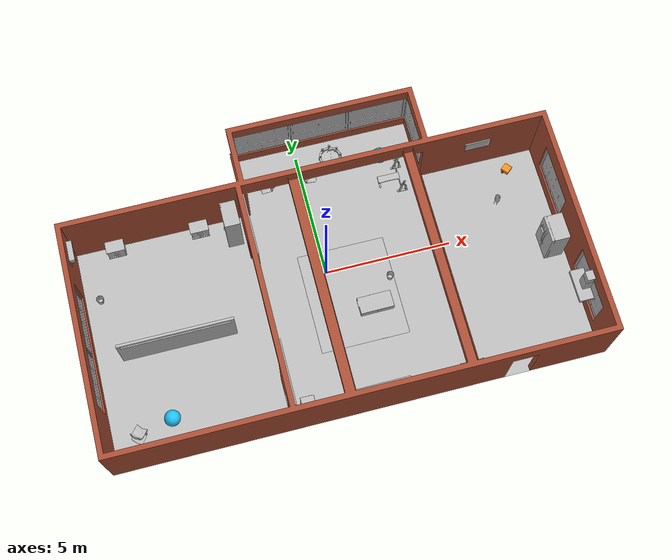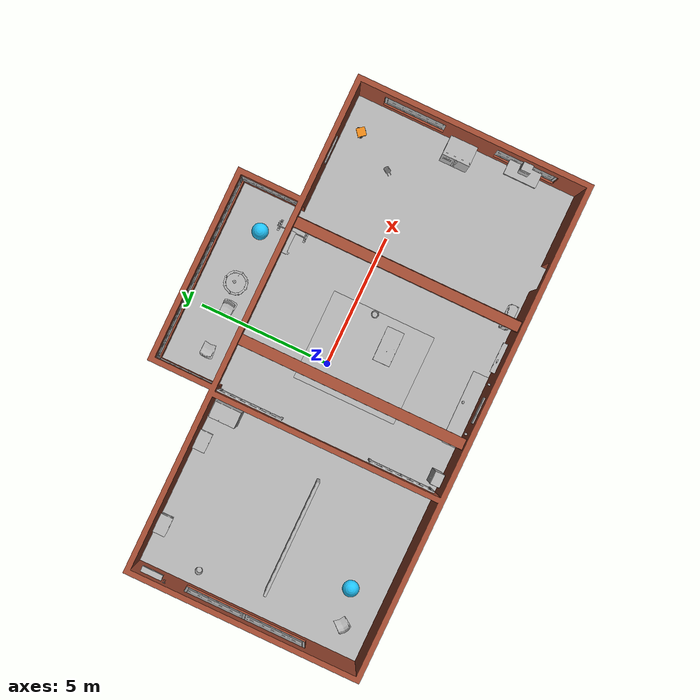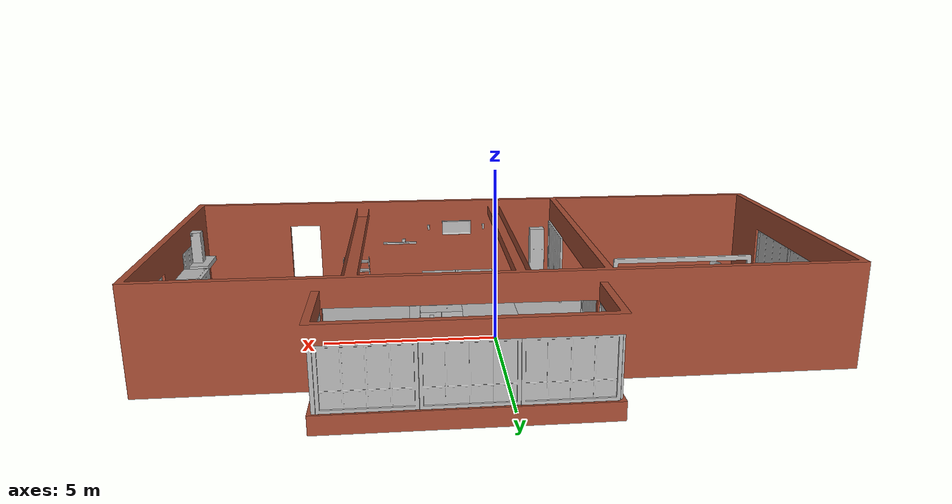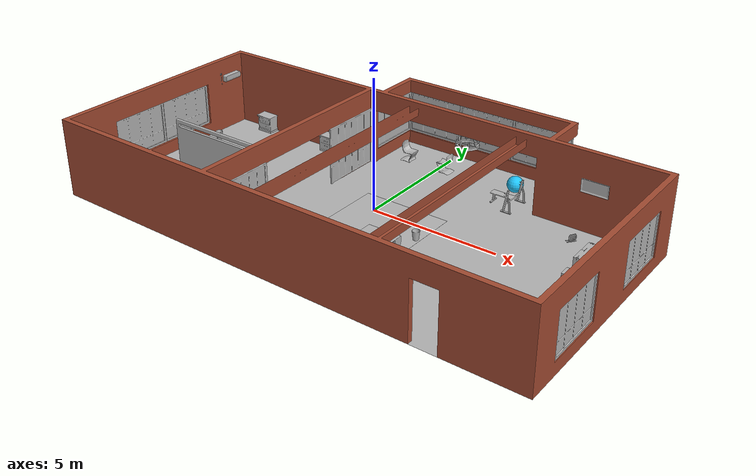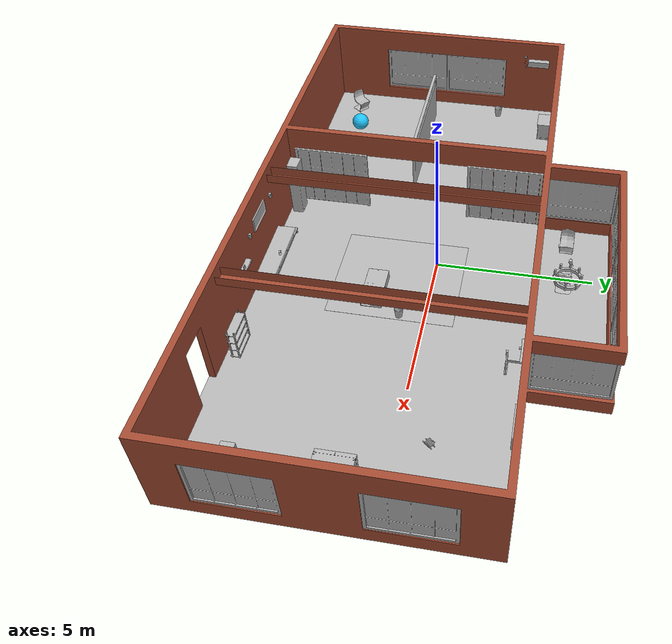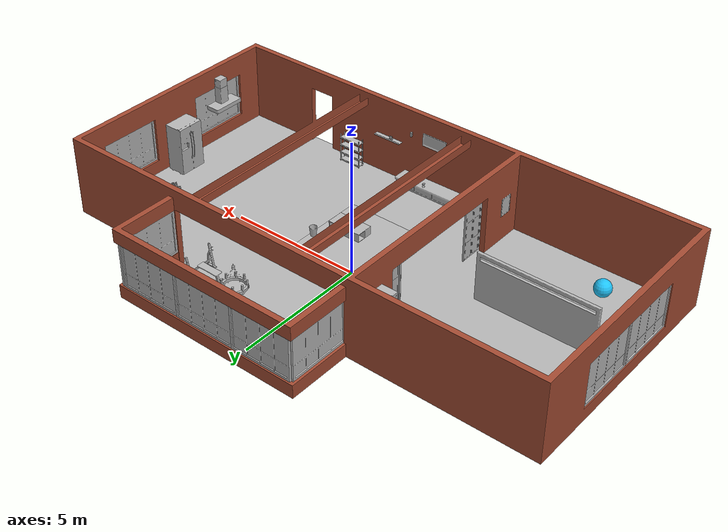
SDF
<sdf version="1.7">
 <world name="default">
  <gravity>0 0 -9.8</gravity>
  <magnetic_field>6e-06 2.3e-05 -4.2e-05</magnetic_field>
  <atmosphere type="adiabatic"/>
  <physics name="default_physics" default="0" type="ode">
   <max_step_size>0.001</max_step_size>
   <real_time_factor>1</real_time_factor>
   <real_time_update_rate>1000</real_time_update_rate>
  </physics>
  <scene>
   <ambient>0.4 0.4 0.4 1</ambient>
   <background>0.7 0.7 0.7 1</background>
   <shadows>0</shadows>
   <grid>0</grid>
   <origin_visual>0</origin_visual>
  </scene>
  <spherical_coordinates>
   <surface_model>EARTH_WGS84</surface_model>
   <latitude_deg>0</latitude_deg>
   <longitude_deg>0</longitude_deg>
   <elevation>0</elevation>
   <heading_deg>0</heading_deg>
  </spherical_coordinates>
  <model name="AirconditionerA_01_001">
   <static>1</static>
   <frame name="aws_robomaker_residential_AirconditionerA_01::__model__" attached_to="aws_robomaker_residential_AirconditionerA_01::link">
    <pose relative_to="__model__">0 0 0 0 -0 0</pose>
   </frame>
   <link name="aws_robomaker_residential_AirconditionerA_01::link">
    <inertial><mass>1</mass></inertial>
    <collision name="collision">
     <geometry>
      <mesh>
       <uri>model://aws_robomaker_residential_AirconditionerA_01/meshes/aws_AirconditionerA_01_collision.DAE</uri>
       <scale>1 1 1</scale>
      </mesh>
     </geometry>
    </collision>
    <visual name="visual">
     <geometry>
      <mesh>
       <uri>model://aws_robomaker_residential_AirconditionerA_01/meshes/aws_AirconditionerA_01_visual.DAE</uri>
      </mesh>
     </geometry>
     <meta><layer>1</layer></meta>
    </visual>
    <pose relative_to="aws_robomaker_residential_AirconditionerA_01::__model__">0 0 0 0 -0 0</pose>
   </link>
   <static>1</static>
   <pose>-9.19941 2.41123 2.08454 0 -0 0</pose>
  </model>
  <model name="AirconditionerB_01_001">
   <static>1</static>
   <frame name="aws_robomaker_residential_AirconditionerB_01::__model__" attached_to="aws_robomaker_residential_AirconditionerB_01::link">
    <pose relative_to="__model__">0 0 0 0 -0 0</pose>
   </frame>
   <link name="aws_robomaker_residential_AirconditionerB_01::link">
    <inertial><mass>1</mass></inertial>
    <collision name="collision">
     <geometry>
      <mesh>
       <uri>model://aws_robomaker_residential_AirconditionerB_01/meshes/aws_AirconditionerB_01_collision.DAE</uri>
       <scale>1 1 1</scale>
      </mesh>
     </geometry>
    </collision>
    <visual name="visual">
     <geometry>
      <mesh>
       <uri>model://aws_robomaker_residential_AirconditionerB_01/meshes/aws_AirconditionerB_01_visual.DAE</uri>
      </mesh>
     </geometry>
     <meta><layer>1</layer></meta>
    </visual>
    <pose relative_to="aws_robomaker_residential_AirconditionerB_01::__model__">0 0 0 0 -0 0</pose>
   </link>
   <pose>-2.00466 -5.22661 0.003485 0 -0 0</pose>
  </model>
  <model name="Ball_01_001">
   <static>1</static>
   <frame name="aws_robomaker_residential_Ball_01::__model__" attached_to="aws_robomaker_residential_Ball_01::link">
    <pose relative_to="__model__">0 0 0 0 -0 0</pose>
   </frame>
   <link name="aws_robomaker_residential_Ball_01::link">
    <inertial>
     <mass>0.12</mass>
     <inertia>
      <ixx>0.030752</ixx>
      <ixy>0</ixy>
      <ixz>0</ixz>
      <iyy>0.030752</iyy>
      <iyz>0</iyz>
      <izz>0.030752</izz>
     </inertia>
    </inertial>
    <collision name="collision">
     <geometry><sphere><radius>0.31</radius></sphere></geometry>
     <surface>
      <friction><ode><mu>0.85</mu><mu2>0.85</mu2></ode></friction>
      <contact><ode><kd>8500</kd><max_vel>5.1</max_vel></ode></contact>
     </surface>
    </collision>
    <visual name="visual">
     <geometry><sphere><radius>0.31</radius></sphere></geometry>
     <material><diffuse>0.12 0.76 0.97 1</diffuse><ambient>0.03 0.21 0.27 1</ambient></material>
     <meta><layer>1</layer></meta>
    </visual>
    <pose relative_to="aws_robomaker_residential_Ball_01::__model__">0 0 0 0 -0 0</pose>
   </link>
   <pose>3.2955 4.22567 0.318684 0 -0 0</pose>
  </model>
  <model name="Ball_01_003">
   <static>1</static>
   <frame name="aws_robomaker_residential_Ball_01::__model__" attached_to="aws_robomaker_residential_Ball_01::link">
    <pose relative_to="__model__">0 0 0 0 -0 0</pose>
   </frame>
   <link name="aws_robomaker_residential_Ball_01::link">
    <inertial>
     <mass>0.12</mass>
     <inertia>
      <ixx>0.030752</ixx>
      <ixy>0</ixy>
      <ixz>0</ixz>
      <iyy>0.030752</iyy>
      <iyz>0</iyz>
      <izz>0.030752</izz>
     </inertia>
    </inertial>
    <collision name="collision">
     <geometry><sphere><radius>0.31</radius></sphere></geometry>
     <surface>
      <friction><ode><mu>0.85</mu><mu2>0.85</mu2></ode></friction>
      <contact><ode><kd>8500</kd><max_vel>5.1</max_vel></ode></contact>
     </surface>
    </collision>
    <visual name="visual">
     <geometry><sphere><radius>0.31</radius></sphere></geometry>
     <material><diffuse>0.12 0.76 0.97 1</diffuse><ambient>0.03 0.21 0.27 1</ambient></material>
     <meta><layer>1</layer></meta>
    </visual>
    <pose relative_to="aws_robomaker_residential_Ball_01::__model__">0 0 0 0 -0 0</pose>
   </link>
   <pose>-6.9455 -4.22174 0.318684 0 -0 0</pose>
  </model>
  <model name="NightStand_01_001">
   <static>1</static>
   <frame name="aws_robomaker_residential_NightStand_01::__model__" attached_to="aws_robomaker_residential_NightStand_01::link">
    <pose relative_to="__model__">0 0 0 0 -0 0</pose>
   </frame>
   <link name="aws_robomaker_residential_NightStand_01::link">
    <inertial>
     <mass>13.6</mass>
     <inertia><ixx>0.6165</ixx><ixy>0</ixy><ixz>0</ixz><iyy>1.29664</iyy><iyz>0</iyz><izz>0.7706</izz></inertia>
    </inertial>
    <collision name="collision">
     <geometry>
      <mesh>
       <uri>model://aws_robomaker_residential_NightStand_01/meshes/aws_NightStand_01_collision.DAE</uri>
       <scale>1 1 1</scale>
      </mesh>
     </geometry>
    </collision>
    <visual name="visual">
     <geometry>
      <mesh><uri>model://aws_robomaker_residential_NightStand_01/meshes/aws_NightStand_01_visual.DAE</uri></mesh>
     </geometry>
     <meta><layer>1</layer></meta>
    </visual>
    <pose relative_to="aws_robomaker_residential_NightStand_01::__model__">0 0 0 0 -0 0</pose>
   </link>
   <static>1</static>
   <pose>-7.72551 2.86042 0.005258 -2e-06 0 0</pose>
  </model>
  <model name="NightStand_01_002">
   <static>1</static>
   <frame name="aws_robomaker_residential_NightStand_01::__model__" attached_to="aws_robomaker_residential_NightStand_01::link">
    <pose relative_to="__model__">0 0 0 0 -0 0</pose>
   </frame>
   <link name="aws_robomaker_residential_NightStand_01::link">
    <inertial>
     <mass>13.6</mass>
     <inertia><ixx>0.6165</ixx><ixy>0</ixy><ixz>0</ixz><iyy>1.29664</iyy><iyz>0</iyz><izz>0.7706</izz></inertia>
    </inertial>
    <collision name="collision">
     <geometry>
      <mesh>
       <uri>model://aws_robomaker_residential_NightStand_01/meshes/aws_NightStand_01_collision.DAE</uri>
       <scale>1 1 1</scale>
      </mesh>
     </geometry>
    </collision>
    <visual name="visual">
     <geometry>
      <mesh><uri>model://aws_robomaker_residential_NightStand_01/meshes/aws_NightStand_01_visual.DAE</uri></mesh>
     </geometry>
     <meta><layer>1</layer></meta>
    </visual>
    <pose relative_to="aws_robomaker_residential_NightStand_01::__model__">0 0 0 0 -0 0</pose>
   </link>
   <static>1</static>
   <pose>-4.40734 2.86042 0.005256 0 2e-06 0</pose>
  </model>
  <model name="Board_01_001">
   <static>1</static>
   <frame name="aws_robomaker_residential_Board_01::__model__" attached_to="aws_robomaker_residential_Board_01::link">
    <pose relative_to="__model__">0 0 0 0 -0 0</pose>
   </frame>
   <link name="aws_robomaker_residential_Board_01::link">
    <inertial><mass>1</mass></inertial>
    <collision name="collision">
     <geometry>
      <mesh>
       <uri>model://aws_robomaker_residential_Board_01/meshes/aws_Board_01_collision.DAE</uri>
       <scale>1 1 1</scale>
      </mesh>
     </geometry>
    </collision>
    <visual name="visual">
     <geometry>
      <mesh><uri>model://aws_robomaker_residential_Board_01/meshes/aws_Board_01_visual.DAE</uri></mesh>
     </geometry>
     <meta><layer>2</layer></meta>
    </visual>
    <pose relative_to="aws_robomaker_residential_Board_01::__model__">0 0 0 0 -0 0</pose>
   </link>
   <static>1</static>
   <pose>2.77907 -5.3927 1.53817 0 -0 0</pose>
  </model>
  <model name="ChairD_01_001">
   <static>1</static>
   <frame name="aws_robomaker_residential_ChairD_01::__model__" attached_to="aws_robomaker_residential_ChairD_01::link">
    <pose relative_to="__model__">0 0 0 0 -0 0</pose>
   </frame>
   <link name="aws_robomaker_residential_ChairD_01::link">
    <inertial>
     <mass>4.5</mass>
     <inertia><ixy>0</ixy><ixz>0</ixz><iyz>0</iyz><ixx>0.217</ixx><iyy>0.217</iyy><izz>0.067</izz></inertia>
    </inertial>
    <collision name="collision">
     <geometry>
      <mesh>
       <uri>model://aws_robomaker_residential_ChairD_01/meshes/aws_ChairD_01_collision.DAE</uri>
       <scale>1 1 1</scale>
      </mesh>
     </geometry>
    </collision>
    <visual name="visual">
     <geometry>
      <mesh><uri>model://aws_robomaker_residential_ChairD_01/meshes/aws_ChairD_01_visual.DAE</uri></mesh>
     </geometry>
     <meta><layer>1</layer></meta>
    </visual>
    <pose relative_to="aws_robomaker_residential_ChairD_01::__model__">0 0 0 0 -0 0</pose>
   </link>
   <pose>-1.38078 4.10446 0 0 -0 0</pose>
  </model>
  <model name="ChairD_01_002">
   <static>1</static>
   <frame name="aws_robomaker_residential_ChairD_01::__model__" attached_to="aws_robomaker_residential_ChairD_01::link">
    <pose relative_to="__model__">0 0 0 0 -0 0</pose>
   </frame>
   <link name="aws_robomaker_residential_ChairD_01::link">
    <inertial>
     <mass>4.5</mass>
     <inertia><ixy>0</ixy><ixz>0</ixz><iyz>0</iyz><ixx>0.217</ixx><iyy>0.217</iyy><izz>0.067</izz></inertia>
    </inertial>
    <collision name="collision">
     <geometry>
      <mesh>
       <uri>model://aws_robomaker_residential_ChairD_01/meshes/aws_ChairD_01_collision.DAE</uri>
       <scale>1 1 1</scale>
      </mesh>
     </geometry>
    </collision>
    <visual name="visual">
     <geometry>
      <mesh><uri>model://aws_robomaker_residential_ChairD_01/meshes/aws_ChairD_01_visual.DAE</uri></mesh>
     </geometry>
     <meta><layer>1</layer></meta>
    </visual>
    <pose relative_to="aws_robomaker_residential_ChairD_01::__model__">0 0 0 0 -0 0</pose>
   </link>
   <pose>0.325214 4.10446 0 0 0 -3.13874</pose>
  </model>
  <model name="ChairD_01_003">
   <static>1</static>
   <frame name="aws_robomaker_residential_ChairD_01::__model__" attached_to="aws_robomaker_residential_ChairD_01::link">
    <pose relative_to="__model__">0 0 0 0 -0 0</pose>
   </frame>
   <link name="aws_robomaker_residential_ChairD_01::link">
    <inertial>
     <mass>4.5</mass>
     <inertia><ixy>0</ixy><ixz>0</ixz><iyz>0</iyz><ixx>0.217</ixx><iyy>0.217</iyy><izz>0.067</izz></inertia>
    </inertial>
    <collision name="collision">
     <geometry>
      <mesh>
       <uri>model://aws_robomaker_residential_ChairD_01/meshes/aws_ChairD_01_collision.DAE</uri>
       <scale>1 1 1</scale>
      </mesh>
     </geometry>
    </collision>
    <visual name="visual">
     <geometry>
      <mesh><uri>model://aws_robomaker_residential_ChairD_01/meshes/aws_ChairD_01_visual.DAE</uri></mesh>
     </geometry>
     <meta><layer>1</layer></meta>
    </visual>
    <pose relative_to="aws_robomaker_residential_ChairD_01::__model__">0 0 0 0 -0 0</pose>
   </link>
   <pose>-8.27078 -4.50446 0 0 -0 0.869673</pose>
  </model>
  <model name="Chandelier_01_001">
   <static>1</static>
   <frame name="aws_robomaker_residential_Chandelier_01::__model__" attached_to="aws_robomaker_residential_Chandelier_01::link">
    <pose relative_to="__model__">0 0 0 0 -0 0</pose>
   </frame>
   <link name="aws_robomaker_residential_Chandelier_01::link">
    <inertial><mass>1</mass></inertial>
    <collision name="collision">
     <geometry>
      <mesh>
       <uri>model://aws_robomaker_residential_Chandelier_01/meshes/aws_Chandelier_01_collision.DAE</uri>
       <scale>1 1 1</scale>
      </mesh>
     </geometry>
    </collision>
    <visual name="visual">
     <geometry>
      <mesh><uri>model://aws_robomaker_residential_Chandelier_01/meshes/aws_Chandelier_01_visual.DAE</uri></mesh>
     </geometry>
     <meta><layer>2</layer></meta>
    </visual>
    <pose relative_to="aws_robomaker_residential_Chandelier_01::__model__">0 0 0 0 -0 0</pose>
   </link>
   <static>1</static>
   <pose>1.22106 4.15574 1.295 0 -0 0</pose>
  </model>
  <model name="Carpet_01_001">
   <static>1</static>
   <frame name="aws_robomaker_residential_Carpet_01::__model__" attached_to="aws_robomaker_residential_Carpet_01::link">
    <pose relative_to="__model__">0 0 0 0 -0 0</pose>
   </frame>
   <link name="aws_robomaker_residential_Carpet_01::link">
    <inertial><mass>8.1</mass></inertial>
    <collision name="collision">
     <geometry>
      <mesh>
       <uri>model://aws_robomaker_residential_Carpet_01/meshes/aws_Carpet_01_collision.DAE</uri>
       <scale>1 1 0.95</scale>
      </mesh>
     </geometry>
     <surface><friction><ode><mu>100</mu><mu2>50</mu2></ode></friction></surface>
     <pose>0 0 -0.01 0 -0 0</pose>
    </collision>
    <visual name="visual">
     <geometry>
      <mesh><uri>model://aws_robomaker_residential_Carpet_01/meshes/aws_Carpet_01_visual.DAE</uri></mesh>
     </geometry>
     <meta><layer>1</layer></meta>
    </visual>
    <pose relative_to="aws_robomaker_residential_Carpet_01::__model__">0 0 0 0 -0 0</pose>
   </link>
   <static>1</static>
   <pose>0.78505 -1.10665 0.001106 0 -0 0</pose>
  </model>
  <model name="SecurityCamera_01_001">
   <static>1</static>
   <frame name="aws_robomaker_residential_SecurityCamera_01::__model__" attached_to="aws_robomaker_residential_SecurityCamera_01::link">
    <pose relative_to="__model__">0 0 0 0 -0 0</pose>
   </frame>
   <link name="aws_robomaker_residential_SecurityCamera_01::link">
    <inertial>
     <mass>1</mass>
     <inertia>
      <ixx>18.2222</ixx>
      <ixy>0</ixy>
      <ixz>0</ixz>
      <iyy>18.2222</iyy>
      <iyz>0</iyz>
      <izz>0.0018767</izz>
     </inertia>
    </inertial>
    <collision name="collision">
     <geometry>
      <mesh>
       <uri>model://aws_robomaker_residential_SecurityCamera_01/meshes/aws_SecurityCamera_01_collision.DAE</uri>
       <scale>1 1 1</scale>
      </mesh>
     </geometry>
    </collision>
    <visual name="visual">
     <geometry>
      <mesh>
       <uri>model://aws_robomaker_residential_SecurityCamera_01/meshes/aws_SecurityCamera_01_visual.DAE</uri>
      </mesh>
     </geometry>
     <meta><layer>2</layer></meta>
    </visual>
    <pose relative_to="aws_robomaker_residential_SecurityCamera_01::__model__">0 0 0 0 -0 0</pose>
   </link>
   <pose>0.842134 -4.99629 0.495067 0 0 -2.84104</pose>
  </model>
  <model name="CoffeeTable_01_001">
   <static>1</static>
   <frame name="aws_robomaker_residential_CoffeeTable_01::__model__" attached_to="aws_robomaker_residential_CoffeeTable_01::link">
    <pose relative_to="__model__">0 0 0 0 -0 0</pose>
   </frame>
   <link name="aws_robomaker_residential_CoffeeTable_01::link">
    <inertial>
     <mass>21.7</mass>
     <inertia><ixx>0.81375</ixx><ixy>0</ixy><ixz>0</ixz><iyy>2.76675</iyy><iyz>0</iyz><izz>3.254</izz></inertia>
    </inertial>
    <collision name="collision">
     <geometry>
      <mesh>
       <uri>model://aws_robomaker_residential_CoffeeTable_01/meshes/aws_CoffeeTable_01_collision.DAE</uri>
       <scale>1 1 1</scale>
      </mesh>
     </geometry>
     <surface><contact><ode><max_vel>0.01</max_vel></ode></contact></surface>
    </collision>
    <visual name="visual">
     <geometry>
      <mesh><uri>model://aws_robomaker_residential_CoffeeTable_01/meshes/aws_CoffeeTable_01_visual.DAE</uri></mesh>
     </geometry>
     <meta><layer>1</layer></meta>
    </visual>
    <pose relative_to="aws_robomaker_residential_CoffeeTable_01::__model__">0 0 0 0 -0 0</pose>
   </link>
   <static>1</static>
   <pose>1.5123 -1.73344 0.041983 0 -0 0.01</pose>
  </model>
  <model name="FitnessEquipment_01_001">
   <static>1</static>
   <frame name="aws_robomaker_residential_FitnessEquipment_01::__model__" attached_to="aws_robomaker_residential_FitnessEquipment_01::link">
    <pose relative_to="__model__">0 0 0 0 -0 0</pose>
   </frame>
   <link name="aws_robomaker_residential_FitnessEquipment_01::link">
    <inertial><mass>80</mass></inertial>
    <collision name="collision">
     <geometry>
      <mesh>
       <uri>model://aws_robomaker_residential_FitnessEquipment_01/meshes/aws_FitnessEquipment_01_collision.DAE</uri>
       <scale>1 1 1</scale>
      </mesh>
     </geometry>
    </collision>
    <visual name="visual">
     <geometry>
      <mesh>
       <uri>model://aws_robomaker_residential_FitnessEquipment_01/meshes/aws_FitnessEquipment_01_visual.DAE</uri>
      </mesh>
     </geometry>
     <meta><layer>1</layer></meta>
    </visual>
    <pose relative_to="aws_robomaker_residential_FitnessEquipment_01::__model__">0 0 0 0 -0 0</pose>
   </link>
   <static>1</static>
   <pose>3.48472 3.1691 0.003168 0 -0 0</pose>
  </model>
  <model name="FoldingDoor_01_001">
   <static>1</static>
   <frame name="aws_robomaker_residential_FoldingDoor_01::__model__" attached_to="aws_robomaker_residential_FoldingDoor_01::link">
    <pose relative_to="__model__">0 0 0 0 -0 0</pose>
   </frame>
   <link name="aws_robomaker_residential_FoldingDoor_01::link">
    <inertial><mass>1</mass></inertial>
    <collision name="collision">
     <geometry>
      <mesh>
       <uri>model://aws_robomaker_residential_FoldingDoor_01/meshes/aws_FoldingDoor_01_collision.DAE</uri>
       <scale>1 1 1</scale>
      </mesh>
     </geometry>
    </collision>
    <visual name="visual">
     <geometry>
      <mesh><uri>model://aws_robomaker_residential_FoldingDoor_01/meshes/aws_FoldingDoor_01_visual.DAE</uri></mesh>
     </geometry>
     <meta><layer>2</layer></meta>
    </visual>
    <pose relative_to="aws_robomaker_residential_FoldingDoor_01::__model__">0 0 0 0 -0 0</pose>
   </link>
   <static>1</static>
   <pose>-2.4611 1.84422 0.041881 0 -0 0</pose>
  </model>
  <model name="FoldingDoor_01_002">
   <static>1</static>
   <frame name="aws_robomaker_residential_FoldingDoor_01::__model__" attached_to="aws_robomaker_residential_FoldingDoor_01::link">
    <pose relative_to="__model__">0 0 0 0 -0 0</pose>
   </frame>
   <link name="aws_robomaker_residential_FoldingDoor_01::link">
    <inertial><mass>1</mass></inertial>
    <collision name="collision">
     <geometry>
      <mesh>
       <uri>model://aws_robomaker_residential_FoldingDoor_01/meshes/aws_FoldingDoor_01_collision.DAE</uri>
       <scale>1 1 1</scale>
      </mesh>
     </geometry>
    </collision>
    <visual name="visual">
     <geometry>
      <mesh><uri>model://aws_robomaker_residential_FoldingDoor_01/meshes/aws_FoldingDoor_01_visual.DAE</uri></mesh>
     </geometry>
     <meta><layer>2</layer></meta>
    </visual>
    <pose relative_to="aws_robomaker_residential_FoldingDoor_01::__model__">0 0 0 0 -0 0</pose>
   </link>
   <static>1</static>
   <pose>-2.4611 -4.05332 0.041881 0 -0 0</pose>
  </model>
  <model name="HouseWallB_01_001">
   <static>1</static>
   <frame name="aws_robomaker_residential_HouseWallB_01::__model__" attached_to="aws_robomaker_residential_HouseWallB_01::link">
    <pose relative_to="__model__">0 0 0 0 -0 0</pose>
   </frame>
   <link name="aws_robomaker_residential_HouseWallB_01::link">
    <inertial><mass>1</mass></inertial>
    <collision name="collision">
     <geometry>
      <mesh>
       <uri>model://aws_robomaker_residential_HouseWallB_01/meshes/aws_HouseWallB_01_collision.DAE</uri>
       <scale>1 1 1</scale>
      </mesh>
     </geometry>
     <material>
      <script><uri>file://media/materials/scripts/gazebo.material</uri><name>Gazebo/Bricks</name></script>
      <ambient>1 1 1 1</ambient>
     </material>
    </collision>
    <visual name="visual">
     <geometry>
      <mesh><uri>model://aws_robomaker_residential_HouseWallB_01/meshes/aws_HouseWallB_01_visual.DAE</uri></mesh>
     </geometry>
     <material>
      <script><uri>file://media/materials/scripts/gazebo.material</uri><name>Gazebo/Bricks</name></script>
      <ambient>1 1 1 1</ambient>
     </material>
     <meta><layer>2</layer></meta>
    </visual>
    <pose relative_to="aws_robomaker_residential_HouseWallB_01::__model__">0 0 0 0 -0 0</pose>
   </link>
   <static>1</static>
  </model>
  <model name="FloorB_01_001">
   <static>1</static>
   <frame name="aws_robomaker_residential_FloorB_01::__model__" attached_to="aws_robomaker_residential_FloorB_01::link">
    <pose relative_to="__model__">0 0 0 0 -0 0</pose>
   </frame>
   <link name="aws_robomaker_residential_FloorB_01::link">
    <inertial><mass>100</mass></inertial>
    <collision name="collision">
     <geometry>
      <mesh>
       <uri>model://aws_robomaker_residential_FloorB_01/meshes/aws_FloorB_01_collision.DAE</uri>
       <scale>1 1 0.9</scale>
      </mesh>
     </geometry>
     <surface><friction><ode><mu>100</mu><mu2>50</mu2></ode></friction></surface>
    </collision>
    <visual name="visual">
     <geometry>
      <mesh><uri>model://aws_robomaker_residential_FloorB_01/meshes/aws_FloorB_01_visual.DAE</uri></mesh>
     </geometry>
     <meta><layer>1</layer></meta>
    </visual>
    <pose relative_to="aws_robomaker_residential_FloorB_01::__model__">0 0 0 0 -0 0</pose>
   </link>
   <static>1</static>
  </model>
  <model name="LightC_01_001">
   <static>1</static>
   <frame name="aws_robomaker_residential_LightC_01::__model__" attached_to="aws_robomaker_residential_LightC_01::link">
    <pose relative_to="__model__">0 0 0 0 -0 0</pose>
   </frame>
   <link name="aws_robomaker_residential_LightC_01::link">
    <inertial><mass>1</mass></inertial>
    <collision name="collision">
     <geometry>
      <mesh>
       <uri>model://aws_robomaker_residential_LightC_01/meshes/aws_LightC_01_collision.DAE</uri>
       <scale>1 1 1</scale>
      </mesh>
     </geometry>
    </collision>
    <visual name="visual">
     <geometry>
      <mesh><uri>model://aws_robomaker_residential_LightC_01/meshes/aws_LightC_01_visual.DAE</uri></mesh>
     </geometry>
     <meta><layer>2</layer></meta>
    </visual>
    <pose relative_to="aws_robomaker_residential_LightC_01::__model__">0 0 0 0 -0 0</pose>
   </link>
   <static>1</static>
   <pose>1.76957 -5.44437 2 0 -0 0</pose>
  </model>
  <model name="LightC_01_002">
   <static>1</static>
   <frame name="aws_robomaker_residential_LightC_01::__model__" attached_to="aws_robomaker_residential_LightC_01::link">
    <pose relative_to="__model__">0 0 0 0 -0 0</pose>
   </frame>
   <link name="aws_robomaker_residential_LightC_01::link">
    <inertial><mass>1</mass></inertial>
    <collision name="collision">
     <geometry>
      <mesh>
       <uri>model://aws_robomaker_residential_LightC_01/meshes/aws_LightC_01_collision.DAE</uri>
       <scale>1 1 1</scale>
      </mesh>
     </geometry>
    </collision>
    <visual name="visual">
     <geometry>
      <mesh><uri>model://aws_robomaker_residential_LightC_01/meshes/aws_LightC_01_visual.DAE</uri></mesh>
     </geometry>
     <meta><layer>2</layer></meta>
    </visual>
    <pose relative_to="aws_robomaker_residential_LightC_01::__model__">0 0 0 0 -0 0</pose>
   </link>
   <static>1</static>
   <pose>-0.138245 -5.44437 2 0 -0 0</pose>
  </model>
  <model name="PortraitA_01">
   <static>1</static>
   <frame name="aws_robomaker_residential_PortraitA_01::__model__" attached_to="aws_robomaker_residential_PortraitA_01::link">
    <pose relative_to="__model__">0 0 0 0 -0 0</pose>
   </frame>
   <link name="aws_robomaker_residential_PortraitA_01::link">
    <inertial><mass>1</mass></inertial>
    <collision name="collision">
     <geometry>
      <mesh>
       <uri>model://aws_robomaker_residential_PortraitA_01/meshes/aws_PortraitA_01_collision.DAE</uri>
       <scale>1 1 1</scale>
      </mesh>
     </geometry>
    </collision>
    <visual name="visual">
     <geometry>
      <mesh><uri>model://aws_robomaker_residential_PortraitA_01/meshes/aws_PortraitA_01_visual.DAE</uri></mesh>
     </geometry>
     <meta><layer>2</layer></meta>
    </visual>
    <pose relative_to="aws_robomaker_residential_PortraitA_01::__model__">0 0 0 0 -0 0</pose>
   </link>
   <static>1</static>
   <pose>-2.71236 -4.81754 1 0 -0 1.5668</pose>
  </model>
  <model name="PortraitD_01">
   <static>1</static>
   <frame name="aws_robomaker_residential_PortraitD_01::__model__" attached_to="aws_robomaker_residential_PortraitD_01::link">
    <pose relative_to="__model__">0 0 0 0 -0 0</pose>
   </frame>
   <link name="aws_robomaker_residential_PortraitD_01::link">
    <inertial><mass>1.5</mass></inertial>
    <collision name="collision">
     <geometry>
      <mesh>
       <uri>model://aws_robomaker_residential_PortraitD_01/meshes/aws_PortraitD_01_collision.DAE</uri>
       <scale>1 1 1</scale>
      </mesh>
     </geometry>
    </collision>
    <visual name="visual">
     <geometry>
      <mesh><uri>model://aws_robomaker_residential_PortraitD_01/meshes/aws_PortraitD_01_visual.DAE</uri></mesh>
     </geometry>
     <meta><layer>2</layer></meta>
    </visual>
    <pose relative_to="aws_robomaker_residential_PortraitD_01::__model__">0 0 0 0 -0 0</pose>
   </link>
   <static>1</static>
   <pose>0.789763 -5.47872 1.8 0 -0 3.13853</pose>
  </model>
  <model name="PortraitD_02">
   <static>1</static>
   <frame name="aws_robomaker_residential_PortraitD_02::__model__" attached_to="aws_robomaker_residential_PortraitD_02::link">
    <pose relative_to="__model__">0 0 0 0 -0 0</pose>
   </frame>
   <link name="aws_robomaker_residential_PortraitD_02::link">
    <inertial><mass>1.5</mass></inertial>
    <collision name="collision">
     <geometry>
      <mesh>
       <uri>model://aws_robomaker_residential_PortraitD_02/meshes/aws_PortraitD_01_collision.DAE</uri>
       <scale>1 1 1</scale>
      </mesh>
     </geometry>
    </collision>
    <visual name="visual">
     <geometry>
      <mesh><uri>model://aws_robomaker_residential_PortraitD_02/meshes/aws_PortraitD_01_visual.DAE</uri></mesh>
     </geometry>
     <meta><layer>2</layer></meta>
    </visual>
    <pose relative_to="aws_robomaker_residential_PortraitD_02::__model__">0 0 0 0 -0 0</pose>
   </link>
   <static>1</static>
   <pose>6.87018 3.08031 1.48844 0 -0 0</pose>
  </model>
  <model name="DeskPortraitD_01">
   <static>1</static>
   <frame name="aws_robomaker_residential_DeskPortraitD_01::__model__" attached_to="aws_robomaker_residential_DeskPortraitD_01::link">
    <pose relative_to="__model__">0 0 0 0 -0 0</pose>
   </frame>
   <link name="aws_robomaker_residential_DeskPortraitD_01::link">
    <inertial>
     <mass>0.4</mass>
     <inertia><ixx>0.0616</ixx><ixy>0</ixy><ixz>0</ixz><iyy>0.1313</iyy><iyz>0</iyz><izz>0.0803</izz></inertia>
    </inertial>
    <collision name="collision">
     <geometry>
      <mesh>
       <uri>model://aws_robomaker_residential_DeskPortraitD_01/meshes/aws_DeskPortraitD_01_collision.DAE</uri>
       <scale>1 1 1</scale>
      </mesh>
     </geometry>
     <surface>
      <friction><ode><mu>0.7</mu><mu2>0.7</mu2></ode></friction>
      <contact><ode><kd>28500</kd></ode></contact>
     </surface>
    </collision>
    <visual name="visual">
     <geometry>
      <mesh>
       <uri>model://aws_robomaker_residential_DeskPortraitD_01/meshes/aws_DeskPortraitD_01_visual.DAE</uri>
      </mesh>
     </geometry>
     <meta><layer>1</layer></meta>
    </visual>
    <pose relative_to="aws_robomaker_residential_DeskPortraitD_01::__model__">0 0 0 0 -0 0</pose>
   </link>
   <pose>2.64556 -5.37622 1.57374 0 0 -3.11283</pose>
  </model>
  <model name="DeskPortraitD_03">
   <static>1</static>
   <frame name="aws_robomaker_residential_DeskPortraitD_03::__model__" attached_to="aws_robomaker_residential_DeskPortraitD_03::link">
    <pose relative_to="__model__">0 0 0 0 -0 0</pose>
   </frame>
   <link name="aws_robomaker_residential_DeskPortraitD_03::link">
    <inertial>
     <mass>0.4</mass>
     <inertia><ixx>0.0616</ixx><ixy>0</ixy><ixz>0</ixz><iyy>0.1313</iyy><iyz>0</iyz><izz>0.0803</izz></inertia>
    </inertial>
    <collision name="collision">
     <geometry>
      <mesh>
       <uri>model://aws_robomaker_residential_DeskPortraitD_03/meshes/aws_DeskPortraitD_01_collision.DAE</uri>
       <scale>1 1 1</scale>
      </mesh>
     </geometry>
     <surface>
      <friction><ode><mu>0.7</mu><mu2>0.7</mu2></ode></friction>
      <contact><ode><kd>28500</kd></ode></contact>
     </surface>
    </collision>
    <visual name="visual">
     <geometry>
      <mesh>
       <uri>model://aws_robomaker_residential_DeskPortraitD_03/meshes/aws_DeskPortraitD_01_visual.DAE</uri>
      </mesh>
     </geometry>
     <meta><layer>1</layer></meta>
    </visual>
    <pose relative_to="aws_robomaker_residential_DeskPortraitD_03::__model__">0 0 0 0 -0 0</pose>
   </link>
   <pose>1.82673 -1.46488 0.126208 1e-05 6e-06 -3.11438</pose>
  </model>
  <model name="Rangehood_01_001">
   <static>1</static>
   <frame name="aws_robomaker_residential_Rangehood_01::__model__" attached_to="aws_robomaker_residential_Rangehood_01::link">
    <pose relative_to="__model__">0 0 0 0 -0 0</pose>
   </frame>
   <link name="aws_robomaker_residential_Rangehood_01::link">
    <inertial><mass>1</mass></inertial>
    <collision name="collision">
     <geometry>
      <mesh>
       <uri>model://aws_robomaker_residential_Rangehood_01/meshes/aws_Rangehood_01_collision.DAE</uri>
       <scale>1 1 1</scale>
      </mesh>
     </geometry>
    </collision>
    <visual name="visual">
     <geometry>
      <mesh><uri>model://aws_robomaker_residential_Rangehood_01/meshes/aws_Rangehood_01_visual.DAE</uri></mesh>
     </geometry>
     <meta><layer>2</layer></meta>
    </visual>
    <pose relative_to="aws_robomaker_residential_Rangehood_01::__model__">0 0 0 0 -0 0</pose>
   </link>
   <static>1</static>
   <pose>9.01979 -3.36994 1.50761 0 -0 0</pose>
  </model>
  <model name="Refrigerator_01_001">
   <static>1</static>
   <frame name="aws_robomaker_residential_Refrigerator_01::__model__" attached_to="aws_robomaker_residential_Refrigerator_01::link">
    <pose relative_to="__model__">0 0 0 0 -0 0</pose>
   </frame>
   <link name="aws_robomaker_residential_Refrigerator_01::link">
    <inertial><mass>1</mass></inertial>
    <collision name="collision">
     <geometry>
      <mesh>
       <uri>model://aws_robomaker_residential_Refrigerator_01/meshes/aws_Refrigerator_01_collision.DAE</uri>
       <scale>1 1 1</scale>
      </mesh>
     </geometry>
    </collision>
    <visual name="visual">
     <geometry>
      <mesh>
       <uri>model://aws_robomaker_residential_Refrigerator_01/meshes/aws_Refrigerator_01_visual.DAE</uri>
      </mesh>
     </geometry>
     <meta><layer>1</layer></meta>
    </visual>
    <pose relative_to="aws_robomaker_residential_Refrigerator_01::__model__">0 0 0 0 -0 0</pose>
   </link>
   <static>1</static>
   <pose>8.70273 -1.03203 0 0 0 -1.5635</pose>
  </model>
  <model name="ShoeRack_01_001">
   <static>1</static>
   <frame name="aws_robomaker_residential_ShoeRack_01::__model__" attached_to="aws_robomaker_residential_ShoeRack_01::link">
    <pose relative_to="__model__">0 0 0 0 -0 0</pose>
   </frame>
   <link name="aws_robomaker_residential_ShoeRack_01::link">
    <inertial>
     <mass>6</mass>
     <inertia>
      <ixx>0.02</ixx>
      <ixy>0</ixy>
      <ixz>0</ixz>
      <iyy>0.04</iyy>
      <iyz>0</iyz>
      <ixx>0.02</ixx>
      <izz>1</izz>
     </inertia>
    </inertial>
    <collision name="collision">
     <geometry>
      <mesh>
       <uri>model://aws_robomaker_residential_ShoeRack_01/meshes/aws_ShoeRack_01_collision.DAE</uri>
       <scale>1 1 1</scale>
      </mesh>
     </geometry>
     <surface>
      <friction><ode><mu>0.2</mu><mu2>0.2</mu2></ode></friction>
      <contact><ode><kd>2500</kd></ode></contact>
     </surface>
    </collision>
    <visual name="visual">
     <geometry>
      <mesh><uri>model://aws_robomaker_residential_ShoeRack_01/meshes/aws_ShoeRack_01_visual.DAE</uri></mesh>
     </geometry>
     <meta><layer>1</layer></meta>
    </visual>
    <pose relative_to="aws_robomaker_residential_ShoeRack_01::__model__">0 0 0 0 -0 0</pose>
   </link>
   <pose>4.29798 -5.17357 0 0 -0 0</pose>
  </model>
  <model name="Tableware_01_001">
   <static>1</static>
   <frame name="aws_robomaker_residential_Tableware_01::__model__" attached_to="aws_robomaker_residential_Tableware_01::link">
    <pose relative_to="__model__">0 0 0 0 -0 0</pose>
   </frame>
   <link name="aws_robomaker_residential_Tableware_01::link">
    <inertial><mass>1</mass></inertial>
    <collision name="collision">
     <geometry>
      <mesh>
       <uri>model://aws_robomaker_residential_Tableware_01/meshes/aws_Tableware_01_collision.DAE</uri>
       <scale>1 1 1</scale>
      </mesh>
     </geometry>
    </collision>
    <visual name="visual">
     <geometry>
      <mesh><uri>model://aws_robomaker_residential_Tableware_01/meshes/aws_Tableware_01_visual.DAE</uri></mesh>
     </geometry>
     <meta><layer>1</layer></meta>
    </visual>
    <pose relative_to="aws_robomaker_residential_Tableware_01::__model__">0 0 0 0 -0 0</pose>
   </link>
   <pose>7.15317 0.982767 0.817812 -0.001238 -0.000976 1.02476</pose>
  </model>
  <model name="Trash_01_001">
   <static>1</static>
   <frame name="aws_robomaker_residential_Trash_01::__model__" attached_to="aws_robomaker_residential_Trash_01::link">
    <pose relative_to="__model__">0 0 0 0 -0 0</pose>
   </frame>
   <link name="aws_robomaker_residential_Trash_01::link">
    <inertial>
     <mass>0.1</mass>
     <inertia><ixy>0</ixy><ixz>0</ixz><iyz>0</iyz><ixx>0.05288</ixx><iyy>0.05288</iyy><izz>0.09132</izz></inertia>
    </inertial>
    <collision name="collision">
     <geometry>
      <mesh>
       <uri>model://aws_robomaker_residential_Trash_01/meshes/aws_Trash_01_collision.DAE</uri>
       <scale>1 1 1</scale>
      </mesh>
     </geometry>
    </collision>
    <visual name="visual">
     <geometry>
      <mesh><uri>model://aws_robomaker_residential_Trash_01/meshes/aws_Trash_01_visual.DAE</uri></mesh>
     </geometry>
     <meta><layer>1</layer></meta>
    </visual>
    <pose relative_to="aws_robomaker_residential_Trash_01::__model__">0 0 0 0 -0 0</pose>
   </link>
   <pose>2.36015 -0.796238 0.011 0 -0 0</pose>
  </model>
  <model name="Trash_01_002">
   <static>1</static>
   <frame name="aws_robomaker_residential_Trash_01::__model__" attached_to="aws_robomaker_residential_Trash_01::link">
    <pose relative_to="__model__">0 0 0 0 -0 0</pose>
   </frame>
   <link name="aws_robomaker_residential_Trash_01::link">
    <inertial>
     <mass>0.1</mass>
     <inertia><ixy>0</ixy><ixz>0</ixz><iyz>0</iyz><ixx>0.05288</ixx><iyy>0.05288</iyy><izz>0.09132</izz></inertia>
    </inertial>
    <collision name="collision">
     <geometry>
      <mesh>
       <uri>model://aws_robomaker_residential_Trash_01/meshes/aws_Trash_01_collision.DAE</uri>
       <scale>1 1 1</scale>
      </mesh>
     </geometry>
    </collision>
    <visual name="visual">
     <geometry>
      <mesh><uri>model://aws_robomaker_residential_Trash_01/meshes/aws_Trash_01_visual.DAE</uri></mesh>
     </geometry>
     <meta><layer>1</layer></meta>
    </visual>
    <pose relative_to="aws_robomaker_residential_Trash_01::__model__">0 0 0 0 -0 0</pose>
   </link>
   <pose>-8.70415 1.00058 0.011 0 -0 0</pose>
  </model>
  <model name="TVCabinet_01_001">
   <static>1</static>
   <frame name="aws_robomaker_residential_TVCabinet_01::__model__" attached_to="aws_robomaker_residential_TVCabinet_01::link">
    <pose relative_to="__model__">0 0 0 0 -0 0</pose>
   </frame>
   <link name="aws_robomaker_residential_TVCabinet_01::link">
    <inertial>
     <mass>59.2</mass>
     <inertia><ixx>30.4</ixx><ixy>0</ixy><ixz>0</ixz><iyy>2.56</iyy><iyz>0</iyz><izz>31.38</izz></inertia>
    </inertial>
    <collision name="collision">
     <geometry>
      <mesh>
       <uri>model://aws_robomaker_residential_TVCabinet_01/meshes/aws_TVCabinet_01_collision.DAE</uri>
       <scale>1 1 1</scale>
      </mesh>
     </geometry>
    </collision>
    <visual name="visual">
     <geometry>
      <mesh><uri>model://aws_robomaker_residential_TVCabinet_01/meshes/aws_TVCabinet_01_visual.DAE</uri></mesh>
     </geometry>
     <meta><layer>1</layer></meta>
    </visual>
    <pose relative_to="aws_robomaker_residential_TVCabinet_01::__model__">0 0 0 0 -0 0</pose>
   </link>
   <static>1</static>
   <pose>0.629509 -5.18358 -0.017049 0 -0 1.5792</pose>
  </model>
  <model name="RoomWall_01_001">
   <static>1</static>
   <frame name="aws_robomaker_residential_RoomWall_01::__model__" attached_to="aws_robomaker_residential_RoomWall_01::link">
    <pose relative_to="__model__">0 0 0 0 -0 0</pose>
   </frame>
   <link name="aws_robomaker_residential_RoomWall_01::link">
    <inertial><mass>100</mass></inertial>
    <collision name="collision">
     <geometry>
      <mesh>
       <uri>model://aws_robomaker_residential_RoomWall_01/meshes/aws_RoomWall_01_collision.DAE</uri>
       <scale>1 1 1</scale>
      </mesh>
     </geometry>
    </collision>
    <visual name="visual">
     <geometry>
      <mesh><uri>model://aws_robomaker_residential_RoomWall_01/meshes/aws_RoomWall_01_visual.DAE</uri></mesh>
     </geometry>
     <meta><layer>2</layer></meta>
    </visual>
    <pose relative_to="aws_robomaker_residential_RoomWall_01::__model__">0 0 0 0 -0 0</pose>
   </link>
   <static>1</static>
   <pose>-6.09755 -1.49618 0.028124 0 -0 0</pose>
  </model>
  <model name="Wardrobe_01_001">
   <static>1</static>
   <frame name="aws_robomaker_residential_Wardrobe_01::__model__" attached_to="aws_robomaker_residential_Wardrobe_01::link">
    <pose relative_to="__model__">0 0 0 0 -0 0</pose>
   </frame>
   <link name="aws_robomaker_residential_Wardrobe_01::link">
    <inertial><mass>51.7</mass></inertial>
    <collision name="collision">
     <geometry>
      <mesh>
       <uri>model://aws_robomaker_residential_Wardrobe_01/meshes/aws_Wardrobe_01_collision.DAE</uri>
       <scale>1 1 1</scale>
      </mesh>
     </geometry>
    </collision>
    <visual name="visual">
     <geometry>
      <mesh><uri>model://aws_robomaker_residential_Wardrobe_01/meshes/aws_Wardrobe_01_visual.DAE</uri></mesh>
     </geometry>
     <meta><layer>1</layer></meta>
    </visual>
    <pose relative_to="aws_robomaker_residential_Wardrobe_01::__model__">0 0 0 0 -0 0</pose>
   </link>
   <static>1</static>
   <pose>-3.14671 2.4762 0.000704 0 0 -1.56967</pose>
  </model>
  <model name="RoomWindow_01_001">
   <static>1</static>
   <frame name="aws_robomaker_residential_RoomWindow_01::__model__" attached_to="aws_robomaker_residential_RoomWindow_01::link">
    <pose relative_to="__model__">0 0 0 0 -0 0</pose>
   </frame>
   <link name="aws_robomaker_residential_RoomWindow_01::link">
    <inertial><mass>1</mass></inertial>
    <collision name="collision">
     <geometry>
      <mesh>
       <uri>model://aws_robomaker_residential_RoomWindow_01/meshes/aws_RoomWindow_01_collision.DAE</uri>
       <scale>1 1 1</scale>
      </mesh>
     </geometry>
    </collision>
    <visual name="visual">
     <geometry>
      <mesh><uri>model://aws_robomaker_residential_RoomWindow_01/meshes/aws_RoomWindow_01_visual.DAE</uri></mesh>
     </geometry>
     <meta><layer>2</layer></meta>
    </visual>
    <pose relative_to="aws_robomaker_residential_RoomWindow_01::__model__">0 0 0 0 -0 0</pose>
   </link>
   <static>1</static>
   <pose>-9.4186 -0.026285 0.502739 0 -0 0</pose>
  </model>
  <model name="RoomWindow_01_002">
   <static>1</static>
   <frame name="aws_robomaker_residential_RoomWindow_01::__model__" attached_to="aws_robomaker_residential_RoomWindow_01::link">
    <pose relative_to="__model__">0 0 0 0 -0 0</pose>
   </frame>
   <link name="aws_robomaker_residential_RoomWindow_01::link">
    <inertial><mass>1</mass></inertial>
    <collision name="collision">
     <geometry>
      <mesh>
       <uri>model://aws_robomaker_residential_RoomWindow_01/meshes/aws_RoomWindow_01_collision.DAE</uri>
       <scale>1 1 1</scale>
      </mesh>
     </geometry>
    </collision>
    <visual name="visual">
     <geometry>
      <mesh><uri>model://aws_robomaker_residential_RoomWindow_01/meshes/aws_RoomWindow_01_visual.DAE</uri></mesh>
     </geometry>
     <meta><layer>2</layer></meta>
    </visual>
    <pose relative_to="aws_robomaker_residential_RoomWindow_01::__model__">0 0 0 0 -0 0</pose>
   </link>
   <static>1</static>
   <pose>-9.4186 -2.37409 0.502739 0 -0 0</pose>
  </model>
  <model name="RoomWindow_01_003">
   <static>1</static>
   <frame name="aws_robomaker_residential_RoomWindow_01::__model__" attached_to="aws_robomaker_residential_RoomWindow_01::link">
    <pose relative_to="__model__">0 0 0 0 -0 0</pose>
   </frame>
   <link name="aws_robomaker_residential_RoomWindow_01::link">
    <inertial><mass>1</mass></inertial>
    <collision name="collision">
     <geometry>
      <mesh>
       <uri>model://aws_robomaker_residential_RoomWindow_01/meshes/aws_RoomWindow_01_collision.DAE</uri>
       <scale>1 1 1</scale>
      </mesh>
     </geometry>
    </collision>
    <visual name="visual">
     <geometry>
      <mesh><uri>model://aws_robomaker_residential_RoomWindow_01/meshes/aws_RoomWindow_01_visual.DAE</uri></mesh>
     </geometry>
     <meta><layer>2</layer></meta>
    </visual>
    <pose relative_to="aws_robomaker_residential_RoomWindow_01::__model__">0 0 0 0 -0 0</pose>
   </link>
   <static>1</static>
   <pose>9.42262 -3.37398 0.502739 0 0 -3.1361</pose>
  </model>
  <model name="RoomWindow_01_004">
   <static>1</static>
   <frame name="aws_robomaker_residential_RoomWindow_01::__model__" attached_to="aws_robomaker_residential_RoomWindow_01::link">
    <pose relative_to="__model__">0 0 0 0 -0 0</pose>
   </frame>
   <link name="aws_robomaker_residential_RoomWindow_01::link">
    <inertial><mass>1</mass></inertial>
    <collision name="collision">
     <geometry>
      <mesh>
       <uri>model://aws_robomaker_residential_RoomWindow_01/meshes/aws_RoomWindow_01_collision.DAE</uri>
       <scale>1 1 1</scale>
      </mesh>
     </geometry>
    </collision>
    <visual name="visual">
     <geometry>
      <mesh><uri>model://aws_robomaker_residential_RoomWindow_01/meshes/aws_RoomWindow_01_visual.DAE</uri></mesh>
     </geometry>
     <meta><layer>2</layer></meta>
    </visual>
    <pose relative_to="aws_robomaker_residential_RoomWindow_01::__model__">0 0 0 0 -0 0</pose>
   </link>
   <static>1</static>
   <pose>9.42256 0.96852 0.496581 0 0 -3.1361</pose>
  </model>
  <model name="RoomWindow_01_005">
   <static>1</static>
   <frame name="aws_robomaker_residential_RoomWindow_01::__model__" attached_to="aws_robomaker_residential_RoomWindow_01::link">
    <pose relative_to="__model__">0 0 0 0 -0 0</pose>
   </frame>
   <link name="aws_robomaker_residential_RoomWindow_01::link">
    <inertial><mass>1</mass></inertial>
    <collision name="collision">
     <geometry>
      <mesh>
       <uri>model://aws_robomaker_residential_RoomWindow_01/meshes/aws_RoomWindow_01_collision.DAE</uri>
       <scale>1 1 1</scale>
      </mesh>
     </geometry>
    </collision>
    <visual name="visual">
     <geometry>
      <mesh><uri>model://aws_robomaker_residential_RoomWindow_01/meshes/aws_RoomWindow_01_visual.DAE</uri></mesh>
     </geometry>
     <meta><layer>2</layer></meta>
    </visual>
    <pose relative_to="aws_robomaker_residential_RoomWindow_01::__model__">0 0 0 0 -0 0</pose>
   </link>
   <static>1</static>
   <pose>4.72232 4.47028 0.502739 0 0 -3.1361</pose>
  </model>
  <model name="RoomWindow_01_006">
   <static>1</static>
   <frame name="aws_robomaker_residential_RoomWindow_01::__model__" attached_to="aws_robomaker_residential_RoomWindow_01::link">
    <pose relative_to="__model__">0 0 0 0 -0 0</pose>
   </frame>
   <link name="aws_robomaker_residential_RoomWindow_01::link">
    <inertial><mass>1</mass></inertial>
    <collision name="collision">
     <geometry>
      <mesh>
       <uri>model://aws_robomaker_residential_RoomWindow_01/meshes/aws_RoomWindow_01_collision.DAE</uri>
       <scale>1 1 1</scale>
      </mesh>
     </geometry>
    </collision>
    <visual name="visual">
     <geometry>
      <mesh><uri>model://aws_robomaker_residential_RoomWindow_01/meshes/aws_RoomWindow_01_visual.DAE</uri></mesh>
     </geometry>
     <meta><layer>2</layer></meta>
    </visual>
    <pose relative_to="aws_robomaker_residential_RoomWindow_01::__model__">0 0 0 0 -0 0</pose>
   </link>
   <static>1</static>
   <pose>3.48852 5.60069 0.502739 0 0 -1.56627</pose>
  </model>
  <model name="RoomWindow_01_007">
   <static>1</static>
   <frame name="aws_robomaker_residential_RoomWindow_01::__model__" attached_to="aws_robomaker_residential_RoomWindow_01::link">
    <pose relative_to="__model__">0 0 0 0 -0 0</pose>
   </frame>
   <link name="aws_robomaker_residential_RoomWindow_01::link">
    <inertial><mass>1</mass></inertial>
    <collision name="collision">
     <geometry>
      <mesh>
       <uri>model://aws_robomaker_residential_RoomWindow_01/meshes/aws_RoomWindow_01_collision.DAE</uri>
       <scale>1 1 1</scale>
      </mesh>
     </geometry>
    </collision>
    <visual name="visual">
     <geometry>
      <mesh><uri>model://aws_robomaker_residential_RoomWindow_01/meshes/aws_RoomWindow_01_visual.DAE</uri></mesh>
     </geometry>
     <meta><layer>2</layer></meta>
    </visual>
    <pose relative_to="aws_robomaker_residential_RoomWindow_01::__model__">0 0 0 0 -0 0</pose>
   </link>
   <static>1</static>
   <pose>1.14095 5.60069 0.502739 0 0 -1.56627</pose>
  </model>
  <model name="RoomWindow_01_008">
   <static>1</static>
   <frame name="aws_robomaker_residential_RoomWindow_01::__model__" attached_to="aws_robomaker_residential_RoomWindow_01::link">
    <pose relative_to="__model__">0 0 0 0 -0 0</pose>
   </frame>
   <link name="aws_robomaker_residential_RoomWindow_01::link">
    <inertial><mass>1</mass></inertial>
    <collision name="collision">
     <geometry>
      <mesh>
       <uri>model://aws_robomaker_residential_RoomWindow_01/meshes/aws_RoomWindow_01_collision.DAE</uri>
       <scale>1 1 1</scale>
      </mesh>
     </geometry>
    </collision>
    <visual name="visual">
     <geometry>
      <mesh><uri>model://aws_robomaker_residential_RoomWindow_01/meshes/aws_RoomWindow_01_visual.DAE</uri></mesh>
     </geometry>
     <meta><layer>2</layer></meta>
    </visual>
    <pose relative_to="aws_robomaker_residential_RoomWindow_01::__model__">0 0 0 0 -0 0</pose>
   </link>
   <static>1</static>
   <pose>-1.19934 5.60069 0.502739 0 0 -1.56627</pose>
  </model>
  <model name="RoomWindow_01_009">
   <static>1</static>
   <frame name="aws_robomaker_residential_RoomWindow_01::__model__" attached_to="aws_robomaker_residential_RoomWindow_01::link">
    <pose relative_to="__model__">0 0 0 0 -0 0</pose>
   </frame>
   <link name="aws_robomaker_residential_RoomWindow_01::link">
    <inertial><mass>1</mass></inertial>
    <collision name="collision">
     <geometry>
      <mesh>
       <uri>model://aws_robomaker_residential_RoomWindow_01/meshes/aws_RoomWindow_01_collision.DAE</uri>
       <scale>1 1 1</scale>
      </mesh>
     </geometry>
    </collision>
    <visual name="visual">
     <geometry>
      <mesh><uri>model://aws_robomaker_residential_RoomWindow_01/meshes/aws_RoomWindow_01_visual.DAE</uri></mesh>
     </geometry>
     <meta><layer>2</layer></meta>
    </visual>
    <pose relative_to="aws_robomaker_residential_RoomWindow_01::__model__">0 0 0 0 -0 0</pose>
   </link>
   <static>1</static>
   <pose>-2.39662 4.38761 0.502739 0 -0 0</pose>
  </model>
  <light name="user_directional_light_0" type="directional">
   <pose>-6.66888 11.1655 1 0 -0 0</pose>
   <diffuse>0.5 0.5 0.5 1</diffuse>
   <specular>0.1 0.1 0.1 1</specular>
   <direction>0.1 0.1 -0.9</direction>
   <attenuation>
    <range>20</range>
    <constant>0.5</constant>
    <linear>0.01</linear>
    <quadratic>0.001</quadratic>
   </attenuation>
   <spot><inner_angle>0</inner_angle><outer_angle>0</outer_angle><falloff>0</falloff></spot>
  </light>
  <model name="robot">
   <link name="base_link">
    <inertial>
     <pose>0.016667 0 -0.013333 0 -0 0</pose>
     <mass>0.6</mass>
     <inertia>
      <ixx>0.00596667</ixx>
      <ixy>0</ixy>
      <ixz>0.000666667</ixz>
      <iyy>0.0068</iyy>
      <iyz>0</iyz>
      <izz>0.00946667</izz>
     </inertia>
    </inertial>
    <collision name="base_link_collision"><geometry><box><size>0.32 0.32 0.16</size></box></geometry></collision>
    <collision name="base_link_fixed_joint_lump__caster_wheel_collision_1">
     <pose>0.1 0 -0.08 0 -0 0</pose>
     <geometry><sphere><radius>0.05</radius></sphere></geometry>
     <surface><friction><ode><mu>0.001</mu><mu2>0.001</mu2></ode></friction></surface>
    </collision>
    <visual name="base_link_visual">
     <geometry><box><size>0.32 0.32 0.16</size></box></geometry>
     <material>
      <script><name>Gazebo/Orange</name><uri>file://media/materials/scripts/gazebo.material</uri></script>
     </material>
    </visual>
    <visual name="base_link_fixed_joint_lump__camera_link_visual_1">
     <pose>0.165 0 0 0 -0 0</pose>
     <geometry><box><size>0.01 0.04 0.04</size></box></geometry>
     <material>
      <script><name>Gazebo/Black</name><uri>file://media/materials/scripts/gazebo.material</uri></script>
     </material>
    </visual>
    <visual name="base_link_fixed_joint_lump__caster_wheel_visual_2">
     <pose>0.1 0 -0.08 0 -0 0</pose>
     <geometry><sphere><radius>0.05</radius></sphere></geometry>
     <material>
      <script><name>Gazebo/Black</name><uri>file://media/materials/scripts/gazebo.material</uri></script>
     </material>
    </visual>
    <sensor name="camera" type="depth">
     <visualize>1</visualize>
     <update_rate>20</update_rate>
     <camera>
      <horizontal_fov>1.089</horizontal_fov>
      <image><format>B8G8R8</format><width>640</width><height>480</height></image>
      <clip><near>0.1</near><far>20</far></clip>
     </camera>
     <plugin name="camera_controller" filename="libgazebo_ros_depth_camera.so">
      <frame_name>camera_link_optical</frame_name>
      <min_depth>0.1</min_depth>
      <max_depth>100.0</max_depth>
      <hackBaseline>0.07</hackBaseline>
      <distortionK1>0.0</distortionK1>
      <distortionK2>0.0</distortionK2>
      <distortionK3>0.0</distortionK3>
      <distortionT1>0.0</distortionT1>
      <distortionT2>0.0</distortionT2>
      <robotNamespace>/</robotNamespace>
     </plugin>
     <pose>0.165 0 0 0 -0 0</pose>
    </sensor>
    <sensor name="depth_camera" type="depth">
     <update_rate>20</update_rate>
     <camera>
      <horizontal_fov>1.0472</horizontal_fov>
      <image><width>640</width><height>480</height><format>R8G8B8</format></image>
      <clip><near>0.1</near><far>20</far></clip>
     </camera>
     <plugin name="camera_controller" filename="libgazebo_ros_camera.so">
      <baseline>0.2</baseline>
      <alwaysOn>1</alwaysOn>
      <updateRate>20.0</updateRate>
      <cameraName>depth_camera</cameraName>
      <imageTopicName>/color/image_raw</imageTopicName>
      <cameraInfoTopicName>/camera_info</cameraInfoTopicName>
      <depthImageTopicName>/depth/image_raw</depthImageTopicName>
      <depthImageInfoTopicName>/depth/camera_info</depthImageInfoTopicName>
      <pointCloudTopicName>/depth/points</pointCloudTopicName>
      <frameName>depth_frame</frameName>
      <pointCloudCutoff>0.5</pointCloudCutoff>
      <pointCloudCutoffMax>3.0</pointCloudCutoffMax>
      <distortionK1>0.00000001</distortionK1>
      <distortionK2>0.00000001</distortionK2>
      <distortionK3>0.00000001</distortionK3>
      <distortionT1>0.00000001</distortionT1>
      <distortionT2>0.00000001</distortionT2>
      <CxPrime>0</CxPrime>
      <Cx>0</Cx>
      <Cy>0</Cy>
      <focalLength>0</focalLength>
      <hackBaseline>0</hackBaseline>
      <robotNamespace>/</robotNamespace>
     </plugin>
     <pose>0.165 0 0 0 -0 0</pose>
    </sensor>
   </link>
   <joint name="left_wheel_joint" type="revolute">
    <pose relative_to="base_link">-0.06 0.18 -0.08 -1.5708 0 0</pose>
    <parent>base_link</parent>
    <child>left_wheel</child>
    <axis>
     <xyz>0 0 1</xyz>
     <limit><lower>-1e+16</lower><upper>1e+16</upper></limit>
     <dynamics><spring_reference>0</spring_reference><spring_stiffness>0</spring_stiffness></dynamics>
    </axis>
   </joint>
   <link name="left_wheel">
    <pose relative_to="left_wheel_joint">0 0 0 0 -0 0</pose>
    <inertial>
     <mass>0.1</mass>
     <inertia>
      <ixx>7.58333e-05</ixx>
      <ixy>0</ixy>
      <ixz>0</ixz>
      <iyy>7.58333e-05</iyy>
      <iyz>0</iyz>
      <izz>0.000125</izz>
     </inertia>
    </inertial>
    <collision name="left_wheel_collision">
     <geometry><cylinder><length>0.04</length><radius>0.05</radius></cylinder></geometry>
    </collision>
    <visual name="left_wheel_visual">
     <geometry><cylinder><length>0.04</length><radius>0.05</radius></cylinder></geometry>
     <material>
      <script><name>Gazebo/Black</name><uri>file://media/materials/scripts/gazebo.material</uri></script>
     </material>
    </visual>
   </link>
   <joint name="right_wheel_joint" type="revolute">
    <pose relative_to="base_link">-0.06 -0.18 -0.08 1.5708 -0 0</pose>
    <parent>base_link</parent>
    <child>right_wheel</child>
    <axis>
     <xyz>0 0 -1</xyz>
     <limit><lower>-1e+16</lower><upper>1e+16</upper></limit>
     <dynamics><spring_reference>0</spring_reference><spring_stiffness>0</spring_stiffness></dynamics>
    </axis>
   </joint>
   <link name="right_wheel">
    <pose relative_to="right_wheel_joint">0 0 0 0 -0 0</pose>
    <inertial>
     <mass>0.1</mass>
     <inertia>
      <ixx>7.58333e-05</ixx>
      <ixy>0</ixy>
      <ixz>0</ixz>
      <iyy>7.58333e-05</iyy>
      <iyz>0</iyz>
      <izz>0.000125</izz>
     </inertia>
    </inertial>
    <collision name="right_wheel_collision">
     <geometry><cylinder><length>0.04</length><radius>0.05</radius></cylinder></geometry>
    </collision>
    <visual name="right_wheel_visual">
     <geometry><cylinder><length>0.04</length><radius>0.05</radius></cylinder></geometry>
     <material>
      <script><name>Gazebo/Black</name><uri>file://media/materials/scripts/gazebo.material</uri></script>
     </material>
    </visual>
   </link>
   <static>0</static>
   <plugin name="diff_drive" filename="libgazebo_ros_diff_drive.so">
    <commandTopic>/cmd_vel</commandTopic>
    <odometryTopic>/odom</odometryTopic>
    <leftJoint>left_wheel_joint</leftJoint>
    <rightJoint>right_wheel_joint</rightJoint>
    <wheelSeparation>0.36</wheelSeparation>
    <wheelDiameter>0.1</wheelDiameter>
    <wheelTorque>200</wheelTorque>
    <wheelAcceleration>10.0</wheelAcceleration>
    <odometryFrame>odom</odometryFrame>
    <robotBaseFrame>base_link</robotBaseFrame>
    <publishOdom>1</publishOdom>
    <publishOdomTF>1</publishOdomTF>
    <publishWheelTF>0</publishWheelTF>
    <publishWheelJointState>1</publishWheelJointState>
    <robotNamespace>/</robotNamespace>
   </plugin>
   <pose>8.1076 2.46372 0.13 0 0 -0.87939</pose>
  </model>
 </world>
</sdf>
